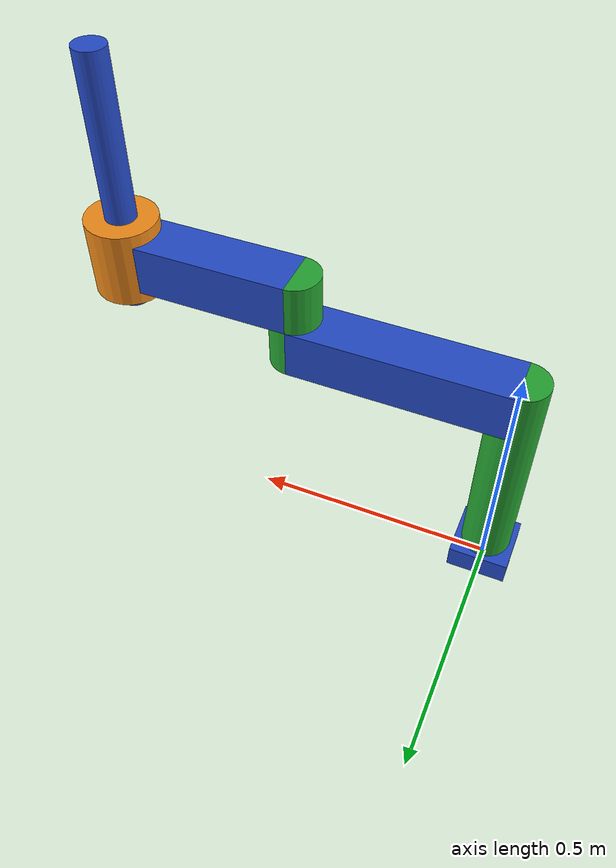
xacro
<?xml version = "1.0"?>
<robot name = "scara" xmlns:xacro="http://www.ros.org/wiki/xacro">

  <!-- Robot arm dimension -->
  <xacro:property name="PI" value="3.1415926535897931"/>

  <!-- Import Rviz colors -->
  <xacro:include filename="$(find scara_description)/urdf/materials.xacro" />
  <!-- Import Gazebo colors and controller plugin -->
  <xacro:include filename="$(find scara_description)/urdf/scara.gazebo" />

  <!-- Used for fixing robot to Gazebo 'base_link' -->
  <link name="world"/>

  <!-- Base Link -->
  <link name = "base_link">
    <visual>
      <geometry>
        <box size = "0.12 0.12 0.05"/>
      </geometry>
      <material name = "blue"/>
      <origin xyz = "0 0 0.025"/>
    </visual>
    <inertial>
      <mass value="1" />
      <origin xyz="0 0 0.025" rpy="0 0 0" />
      <inertia ixx="1" ixy="0" ixz="0" iyy="1" iyz="0" izz="1" />
    </inertial>
    <collision>
      <geometry>
        <box size = "0.12 0.12 0.05"/>
      </geometry>
      <material name = "blue"/>
      <origin xyz = "0 0 0.025"/>
    </collision>
  </link>

  <joint name="base2world" type="fixed">
    <parent link="world"/>
    <child link="base_link"/>
  </joint>

  <!-- revolute1 1 -->
  <link name = "revolute1">
    <visual>
      <geometry>
        <cylinder length = "0.45" radius = "0.05"/>
      </geometry>
      <material name = "green"/>
      <origin xyz = "0 0 0.225"/>
    </visual>
    <inertial>
      <mass value="0.5" />
      <origin xyz="0 0 0.05" rpy="0 0 0" />
      <inertia ixx="0.5" ixy="0" ixz="0" iyy="0.5" iyz="0" izz="0.5" />
    </inertial>
    <collision>
      <geometry>
        <cylinder length = "0.45" radius = "0.05"/>
      </geometry>
      <material name = "green"/>
      <origin xyz = "0 0 0.225"/>
    </collision>
  </link>

  <joint name = "joint1" type="continuous">
    <parent link = "base_link"/>
    <child link = "revolute1"/>
    <origin xyz = "0 0 0.05"/>
    <limit effort="1000.0" lower="-1.57" upper="1.57" velocity="0.5"/>
    <axis xyz = "0 0 1"/>
    <dynamics damping="0.2" friction="0.1" />
  </joint>

  <!-- link 1 -->
  <link name = "link1">
    <visual>
      <geometry>
        <box size = "0.1 0.1 0.425"/>
      </geometry>
      <material name = "blue"/>
      <origin rpy = "0 1.571 0" xyz = "0.2125 0 0"/>
    </visual>
    <inertial>
      <mass value="0.5" />
      <origin xyz="0.2125 0 0" rpy="0 0 0" />
      v<inertia ixx="0.5" ixy="0" ixz="0" iyy="0.5" iyz="0" izz="0.5" />
    </inertial>
    <collision>
      <geometry>
        <box size = "0.1 0.1 0.425"/>
      </geometry>
      <material name = "blue"/>
      <origin rpy = "0 1.571 0" xyz = "0.2125 0 0"/>
    </collision>
  </link>

  <joint name = "link12revolute1" type="fixed">
    <parent link = "revolute1"/>
    <child link = "link1"/>
    <origin xyz = "0 0 0.4"/>
  </joint>

  <!-- revolute 2 -->
  <link name = "revolute2">
    <visual>
      <geometry>
        <cylinder length = "0.2" radius = "0.05"/>
      </geometry>
      <material name = "green"/>
      <origin rpy = "0 0 0" xyz = "0 0 0"/>
    </visual>
    <inertial>
      <mass value="0.5" />
      <origin xyz="0 0 0" rpy="0 0 0" />
      v<inertia ixx="0.5" ixy="0" ixz="0" iyy="0.5" iyz="0" izz="0.5" />
    </inertial>
    <collision>
      <geometry>
        <cylinder length = "0.2" radius = "0.05"/>
      </geometry>
      <material name = "green"/>
      <origin rpy = "0 0 0" xyz = "0 0 0"/>
    </collision>
  </link>

  <joint name = "joint2" type="continuous">
    <parent link = "link1"/>
    <child link = "revolute2"/>
    <origin xyz = "0.425 0 0.05"/>
    <limit effort="1000.0" lower="-1.57" upper="1.57" velocity="0.5"/>
    <axis xyz = "0 0 1"/>
    <dynamics damping="0.2" friction="0.1" />
  </joint>

  <!-- link 2 -->
  <link name = "link2">
    <visual>
      <geometry>
        <box size = "0.1 0.1 0.345"/>
      </geometry>
      <material name = "blue"/>
      <origin rpy = "0 1.571 0" xyz = "0.1725 0 0"/>
    </visual>
    <inertial>
      <mass value="0.5" />
      <origin xyz="0.1725 0 0" rpy="0 0 0" />
      v<inertia ixx="0.5" ixy="0" ixz="0" iyy="0.5" iyz="0" izz="0.5" />
    </inertial>
    <collision>
      <geometry>
        <box size = "0.1 0.1 0.345"/>
      </geometry>
      <material name = "blue"/>
      <origin rpy = "0 1.571 0" xyz = "0.1725 0 0"/>
    </collision>
  </link>

  <joint name = "link22revolute2" type="fixed">
    <parent link = "revolute2"/>
    <child link = "link2"/>
    <origin xyz = "0 0 0.05"/>
  </joint>

  <!-- prismatic 3 -->
  <link name = "prismatic3">
    <visual>
      <geometry>
        <cylinder length = "0.15" radius = "0.07"/>
      </geometry>
      <material name = "orange"/>
      <origin xyz = "0 0 0"/>
    </visual>
    <inertial>
      <mass value="0.5" />
      <origin xyz="0 0 0" rpy="0 0 0" />
      <inertia ixx="0.5" ixy="0" ixz="0" iyy="0.5" iyz="0" izz="0.5" />
    </inertial>
    <collision>
      <geometry>
        <cylinder length = "0.15" radius = "0.07"/>
      </geometry>
      <material name = "orange"/>
      <origin xyz = "0 0 0"/>
    </collision>
  </link>

  <joint name = "prismatic32link2" type="fixed">
    <parent link = "link2"/>
    <child link = "prismatic3"/>
    <origin rpy = "3.14 0 0" xyz = "0.345 0 0"/>
  </joint>

  <!-- link 3 -->
  <link name = "link3">
    <visual>
      <geometry>
        <cylinder length = "0.5" radius = "0.03"/>
      </geometry>
      <material name = "blue"/>
      <origin xyz = "0 0 -0.25"/>
    </visual>
    <inertial>
      <mass value="0.2" />
      <origin xyz="0 0 -0.25" rpy="0 0 0" />
      <inertia ixx="0.2" ixy="0" ixz="0" iyy="0.2" iyz="0" izz="0.2" />
    </inertial>
    <collision>
      <geometry>
        <cylinder length = "0.5" radius = "0.03"/>
      </geometry>
      <material name = "blue"/>
      <origin xyz = "0 0 -0.25"/>
    </collision>
  </link>

  <joint name = "joint3" type="prismatic">
    <parent link = "prismatic3"/>
    <child link = "link3"/>
    <origin xyz = "0 0 0.11"/>
    <limit effort="1000" lower="-0.00001" upper="0.3" velocity="0.1"/>
    <axis xyz = "0 0 1"/>
    <dynamics damping="0.4" friction="5" />
  </joint>

  <!-- Controller -->
  <transmission name="tran1">
    <type>transmission_interface/SimpleTransmission</type>
    <joint name="joint1">
      <hardwareInterface>hardware_interface/VelocityJointInterface</hardwareInterface>
    </joint>
    <actuator name="motor1">
      <hardwareInterface>hardware_interface/VelocityJointInterface</hardwareInterface>
      <mechanicalReduction>1</mechanicalReduction>
    </actuator>
  </transmission>

  <transmission name="tran2">
    <type>transmission_interface/SimpleTransmission</type>
    <joint name="joint2">
      <hardwareInterface>hardware_interface/VelocityJointInterface</hardwareInterface>
    </joint>
    <actuator name="motor2">
      <hardwareInterface>hardware_interface/VelocityJointInterface</hardwareInterface>
      <mechanicalReduction>1</mechanicalReduction>
    </actuator>
  </transmission>

  <transmission name="tran3">
    <type>transmission_interface/SimpleTransmission</type>
    <joint name="joint3">
      <hardwareInterface>hardware_interface/VelocityJointInterface</hardwareInterface>
    </joint>
    <actuator name="motor3">
      <hardwareInterface>hardware_interface/VelocityJointInterface</hardwareInterface>
      <mechanicalReduction>1</mechanicalReduction>
    </actuator>
  </transmission>

  <xacro:include filename="$(find scara_description)/urdf/franka_depth.xacro" />
  <xacro:camera_gazebo_sensor xyz="1 -1.5 1.5" rpy="0 0.5 2.0" sensor_name="camera"/>
</robot>

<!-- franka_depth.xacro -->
<robot xmlns:xacro="http://www.ros.org/wiki/xacro" name="camera">
  <xacro:macro name="camera_gazebo_sensor" params="xyz rpy sensor_name">

    <!-- joint/link data -->
    <!-- You can modify this to give the camera actual geometry -->
    <link name="camera_link"></link>
    <link name="${sensor_name}_optical_link"></link>

    <joint name="robot_camera_joint" type="fixed">
      <origin xyz="${xyz}" rpy="${rpy}" />
      <parent link="base_link" />
      <child link="camera_link" />
    </joint>
    <joint name="camera_optical_joint" type="fixed">
      <origin xyz="0 0 0" rpy="-1.57 0 -1.57" />
      <parent link="camera_link" />
      <child link="${sensor_name}_optical_link" />
    </joint>

  <!-- Sensor -->
  <gazebo reference="camera_link">

    <sensor type="depth" name="${sensor_name}">
	  <always_on>1</always_on>
	  <visualize>true</visualize>
	  <update_rate>20</update_rate>
	  <camera>
	    <horizontal_fov>1.047198</horizontal_fov>
	    <image>
	    <width>640</width>
	    <height>480</height>
	    <format>B8G8R8</format>  <!--Changed format since channels were inverted, to go back, change to R8G8B8-->
	    </image>
	    <clip>
	      <near>0.05</near>
	      <far>3</far>
	    </clip>
	  </camera>

	<plugin name="camera_plugin" filename="libgazebo_ros_openni_kinect.so">
          <baseline>0.2</baseline>
          <alwaysOn>true</alwaysOn>
          <updateRate>0.0</updateRate>
          <cameraName>camera_ir</cameraName>
          <imageTopicName>/camera/color/image_raw</imageTopicName>
          <cameraInfoTopicName>/camera/color/camera_info</cameraInfoTopicName>
          <depthImageTopicName>/camera/depth/image_raw</depthImageTopicName>
          <depthImageCameraInfoTopicName>/camera/depth/camera_info</depthImageCameraInfoTopicName>
          <pointCloudTopicName>/camera/depth/points</pointCloudTopicName>
          <frameName>camera_optical_link</frameName>
          <pointCloudCutoff>0.10</pointCloudCutoff>
          <pointCloudCutoffMax>3.0</pointCloudCutoffMax>
          <distortionK1>0</distortionK1>
          <distortionK2>0</distortionK2>
          <distortionK3>0</distortionK3>
          <distortionT1>0</distortionT1>
          <distortionT2>0</distortionT2>
          <CxPrime>0</CxPrime>
          <Cx>0</Cx>
          <Cy>0</Cy>
          <focalLength>0</focalLength>
          <hackBaseline>0</hackBaseline>
        </plugin>
      </sensor>
    </gazebo>

  </xacro:macro>
</robot>
